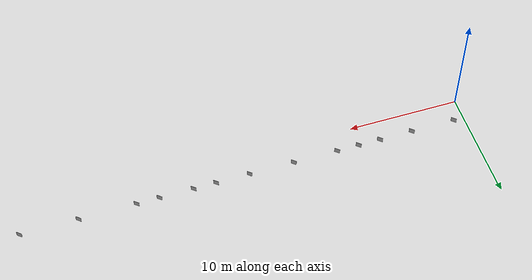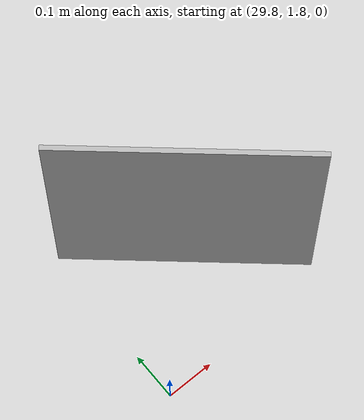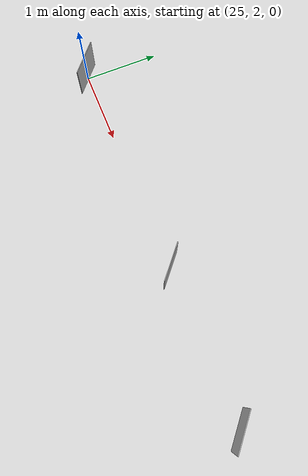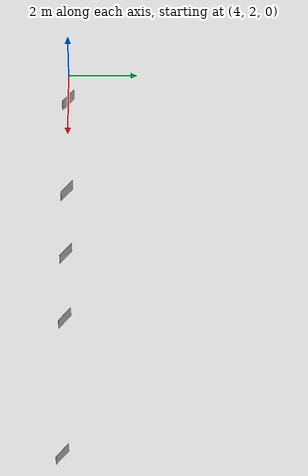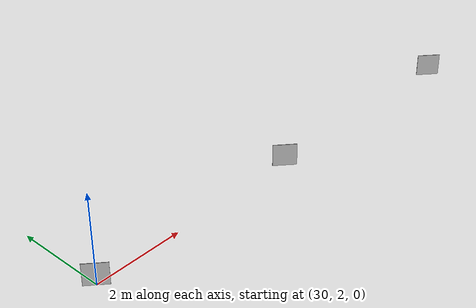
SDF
<sdf version="1.4">
 <world name="vrc_task_1">
  <scene><ambient>0.2 0.2 0.2 1.0</ambient><grid>false</grid></scene>
  <physics type="ode">
   <gravity>0 0 -9.81</gravity>
   <ode>
    <solver>
     <use_dynamic_moi_rescaling>true</use_dynamic_moi_rescaling>
     <type>quick</type>
     <iters>50</iters>
     <sor>1.4</sor>
    </solver>
    <constraints>
     <cfm>0.0</cfm>
     <erp>0.2</erp>
     <contact_max_correcting_vel>100.0</contact_max_correcting_vel>
     <contact_surface_layer>0.0</contact_surface_layer>
    </constraints>
   </ode>
   <real_time_update_rate>1000</real_time_update_rate>
   <max_step_size>0.001</max_step_size>
  </physics>
  <light type="directional" name="sun">
   <cast_shadows>false</cast_shadows>
   <pose>0 0 100 0 0 0</pose>
   <diffuse>0.8 0.8 0.8 1</diffuse>
   <specular>0.9 0.9 0.9 1</specular>
   <attenuation>
    <range>1000</range>
    <constant>0.9</constant>
    <linear>0.01</linear>
    <quadratic>0.001</quadratic>
   </attenuation>
   <direction>0.2 0.2 -0.9</direction>
  </light>
  <light type="point" name="light_bulb">
   <cast_shadows>false</cast_shadows>
   <pose>-14 0 5 0 0 0</pose>
   <diffuse>0.3 0.3 0.3 1</diffuse>
   <specular>0.0 0.0 0.0 1</specular>
   <attenuation>
    <range>80</range>
    <constant>0.9</constant>
    <linear>0.01</linear>
    <quadratic>0.001</quadratic>
   </attenuation>
  </light>
  <include>
   <uri>model://fiducials-page-001</uri>
   <name>fiducials-page-001</name>
   <static>true</static>
   <pose>1 2 0 0 0 4</pose>
  </include>
  <include>
   <uri>model://fiducials-page-002</uri>
   <name>fiducials-page-002</name>
   <static>true</static>
   <pose>5 2 0 0 0 4</pose>
  </include>
  <include>
   <uri>model://fiducials-page-003</uri>
   <name>fiducials-page-003</name>
   <static>true</static>
   <pose>8 2 0 0 0 4</pose>
  </include>
  <include>
   <uri>model://fiducials-page-004</uri>
   <name>fiducials-page-004</name>
   <static>true</static>
   <pose>10 2 0 0 0 4</pose>
  </include>
  <include>
   <uri>model://fiducials-page-005</uri>
   <name>fiducials-page-005</name>
   <static>true</static>
   <pose>12 2 0 0 0 4</pose>
  </include>
  <include>
   <uri>model://fiducials-page-006</uri>
   <name>fiducials-page-006</name>
   <static>true</static>
   <pose>16 2 0 0 0 4</pose>
  </include>
  <include>
   <uri>model://fiducials-page-007</uri>
   <name>fiducials-page-007</name>
   <static>true</static>
   <pose>20 2 0 0 0 4</pose>
  </include>
  <include>
   <uri>model://fiducials-page-008</uri>
   <name>fiducials-page-008</name>
   <static>true</static>
   <pose>23 2 0 0 0 4</pose>
  </include>
  <include>
   <uri>model://fiducials-page-009</uri>
   <name>fiducials-page-009</name>
   <static>true</static>
   <pose>25 2 0 0 0 4</pose>
  </include>
  <include>
   <uri>model://fiducials-page-010</uri>
   <name>fiducials-page-010</name>
   <static>true</static>
   <pose>28 2 0 0 0 4</pose>
  </include>
  <include>
   <uri>model://fiducials-page-011</uri>
   <name>fiducials-page-011</name>
   <static>true</static>
   <pose>30 2 0 0 0 4</pose>
  </include>
  <include>
   <uri>model://fiducials-page-012</uri>
   <name>fiducials-page-012</name>
   <static>true</static>
   <pose>35 2 0 0 0 4</pose>
  </include>
  <include>
   <uri>model://fiducials-page-013</uri>
   <name>fiducials-page-013</name>
   <static>true</static>
   <pose>40 2 0 0 0 4</pose>
  </include>
  <model name="road_boxes">
   <static>true</static>
   <link name="link">
    <collision name="collision_1">
     <pose>51 0 0 0 0 0</pose>
     <geometry><box><size>102 7.34 0.02</size></box></geometry>
     <surface><friction><ode><mu>100</mu><mu2>50</mu2></ode></friction></surface>
    </collision>
    <collision name="collision_2">
     <pose>125 25 0 0 0 0.78539</pose>
     <geometry><box><size>72 7.34 0.02</size></box></geometry>
     <surface><friction><ode><mu>100</mu><mu2>50</mu2></ode></friction></surface>
    </collision>
    <collision name="collision_3">
     <pose>150 75 0 0 0 0</pose>
     <geometry><box><size>7.34 53 0.02</size></box></geometry>
     <surface><friction><ode><mu>100</mu><mu2>50</mu2></ode></friction></surface>
    </collision>
    <collision name="collision_4">
     <pose>173.5 100 0 0 0 0</pose>
     <geometry><box><size>54.5 7.34 0.02</size></box></geometry>
     <surface><friction><ode><mu>100</mu><mu2>50</mu2></ode></friction></surface>
    </collision>
    <collision name="collision_5">
     <pose>198 106 0 0 0 0</pose>
     <geometry><box><size>6 5 0.02</size></box></geometry>
     <surface><friction><ode><mu>100</mu><mu2>50</mu2></ode></friction></surface>
    </collision>
   </link>
  </model>
  <plugin filename="libVRCPlugin.so" name="vrc_plugin">
   <atlas><model_name>atlas</model_name><pin_link>utorso</pin_link></atlas>
   <drc_vehicle>
    <model_name>drc_vehicle</model_name>
    <seat_link>polaris_ranger_ev::chassis</seat_link>
   </drc_vehicle>
   <drc_fire_hose>
    <fire_hose_model>fire_hose</fire_hose_model>
    <coupling_link>coupling</coupling_link>
    <standpipe_model>standpipe</standpipe_model>
    <spout_link>standpipe</spout_link>
    <thread_pitch>-1000</thread_pitch>
    <coupling_relative_pose>1.17038e-05 -0.125623 0.35 -0.0412152 -1.57078 1.61199</coupling_relative_pose>
   </drc_fire_hose>
  </plugin>
  <plugin filename="libVRCScoringPlugin.so" name="vrc_scoring">
   <score_file>/tmp/vrc_final_task1/score.log</score_file>
  </plugin>
 </world>
</sdf>

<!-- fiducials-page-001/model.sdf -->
<sdf version="1.6">
  <model name="fiducials-page-001">
    <static>true</static>
    <link name="link">
      <visual name="visual">
        <geometry>
          <mesh>
            <uri>model://fiducials-page-001/meshes/fiducials-page-001.dae</uri>
          <scale>1.0 1.0 1.0</scale></mesh>
        </geometry>
      </visual>
    </link>
  </model>
</sdf>

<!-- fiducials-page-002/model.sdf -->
<sdf version="1.6">
  <model name="fiducials-page-002">
    <static>true</static>
    <link name="link">
      <visual name="visual">
        <geometry>
          <mesh>
            <uri>model://fiducials-page-002/meshes/fiducials-page-002.dae</uri>
          <scale>1.0 1.0 1.0</scale></mesh>
        </geometry>
      </visual>
    </link>
  </model>
</sdf>

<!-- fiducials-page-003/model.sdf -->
<sdf version="1.6">
  <model name="fiducials-page-003">
    <static>true</static>
    <link name="link">
      <visual name="visual">
        <geometry>
          <mesh>
            <uri>model://fiducials-page-003/meshes/fiducials-page-003.dae</uri>
          <scale>1.0 1.0 1.0</scale></mesh>
        </geometry>
      </visual>
    </link>
  </model>
</sdf>

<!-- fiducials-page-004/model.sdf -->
<sdf version="1.6">
  <model name="fiducials-page-004">
    <static>true</static>
    <link name="link">
      <visual name="visual">
        <geometry>
          <mesh>
            <uri>model://fiducials-page-004/meshes/fiducials-page-004.dae</uri>
          <scale>1.0 1.0 1.0</scale></mesh>
        </geometry>
      </visual>
    </link>
  </model>
</sdf>

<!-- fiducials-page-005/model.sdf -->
<sdf version="1.6">
  <model name="fiducials-page-005">
    <static>true</static>
    <link name="link">
      <visual name="visual">
        <geometry>
          <mesh>
            <uri>model://fiducials-page-005/meshes/fiducials-page-005.dae</uri>
          <scale>1.0 1.0 1.0</scale></mesh>
        </geometry>
      </visual>
    </link>
  </model>
</sdf>

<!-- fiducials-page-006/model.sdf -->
<sdf version="1.6">
  <model name="fiducials-page-006">
    <static>true</static>
    <link name="link">
      <visual name="visual">
        <geometry>
          <mesh>
            <uri>model://fiducials-page-006/meshes/fiducials-page-006.dae</uri>
          <scale>1.0 1.0 1.0</scale></mesh>
        </geometry>
      </visual>
    </link>
  </model>
</sdf>

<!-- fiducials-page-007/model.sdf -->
<sdf version="1.6">
  <model name="fiducials-page-007">
    <static>true</static>
    <link name="link">
      <visual name="visual">
        <geometry>
          <mesh>
            <uri>model://fiducials-page-007/meshes/fiducials-page-007.dae</uri>
          <scale>1.0 1.0 1.0</scale></mesh>
        </geometry>
      </visual>
    </link>
  </model>
</sdf>

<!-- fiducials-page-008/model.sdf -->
<sdf version="1.6">
  <model name="fiducials-page-008">
    <static>true</static>
    <link name="link">
      <visual name="visual">
        <geometry>
          <mesh>
            <uri>model://fiducials-page-008/meshes/fiducials-page-008.dae</uri>
          <scale>1.0 1.0 1.0</scale></mesh>
        </geometry>
      </visual>
    </link>
  </model>
</sdf>

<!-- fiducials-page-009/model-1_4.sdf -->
<sdf version="1.4">
  <model name="fiducials-page-009">
    <static>true</static>
    <link name="link">
      <visual name="visual">
        <geometry>
          <mesh>
            <uri>model://fiducials-page-009/meshes/fiducials-page-009.dae</uri>
          <scale>1.0 1.0 1.0</scale></mesh>
        </geometry>
      </visual>
    </link>
  </model>
</sdf>

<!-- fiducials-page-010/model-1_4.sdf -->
<sdf version="1.4">
  <model name="fiducials-page-010">
    <static>true</static>
    <link name="link">
      <visual name="visual">
        <geometry>
          <mesh>
            <uri>model://fiducials-page-010/meshes/fiducials-page-010.dae</uri>
          <scale>1.0 1.0 1.0</scale></mesh>
        </geometry>
      </visual>
    </link>
  </model>
</sdf>

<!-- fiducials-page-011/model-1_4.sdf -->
<sdf version="1.4">
  <model name="fiducials-page-011">
    <static>true</static>
    <link name="link">
      <visual name="visual">
        <geometry>
          <mesh>
            <uri>model://fiducials-page-011/meshes/fiducials-page-011.dae</uri>
          <scale>1.0 1.0 1.0</scale></mesh>
        </geometry>
      </visual>
    </link>
  </model>
</sdf>

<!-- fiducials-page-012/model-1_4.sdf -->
<sdf version="1.4">
  <model name="fiducials-page-012">
    <static>true</static>
    <link name="link">
      <visual name="visual">
        <geometry>
          <mesh>
            <uri>model://fiducials-page-012/meshes/fiducials-page-012.dae</uri>
          <scale>1.0 1.0 1.0</scale></mesh>
        </geometry>
      </visual>
    </link>
  </model>
</sdf>

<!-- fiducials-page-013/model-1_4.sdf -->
<sdf version="1.4">
  <model name="fiducials-page-013">
    <static>true</static>
    <link name="link">
      <visual name="visual">
        <geometry>
          <mesh>
            <uri>model://fiducials-page-013/meshes/fiducials-page-013.dae</uri>
          <scale>1.0 1.0 1.0</scale></mesh>
        </geometry>
      </visual>
    </link>
  </model>
</sdf>
